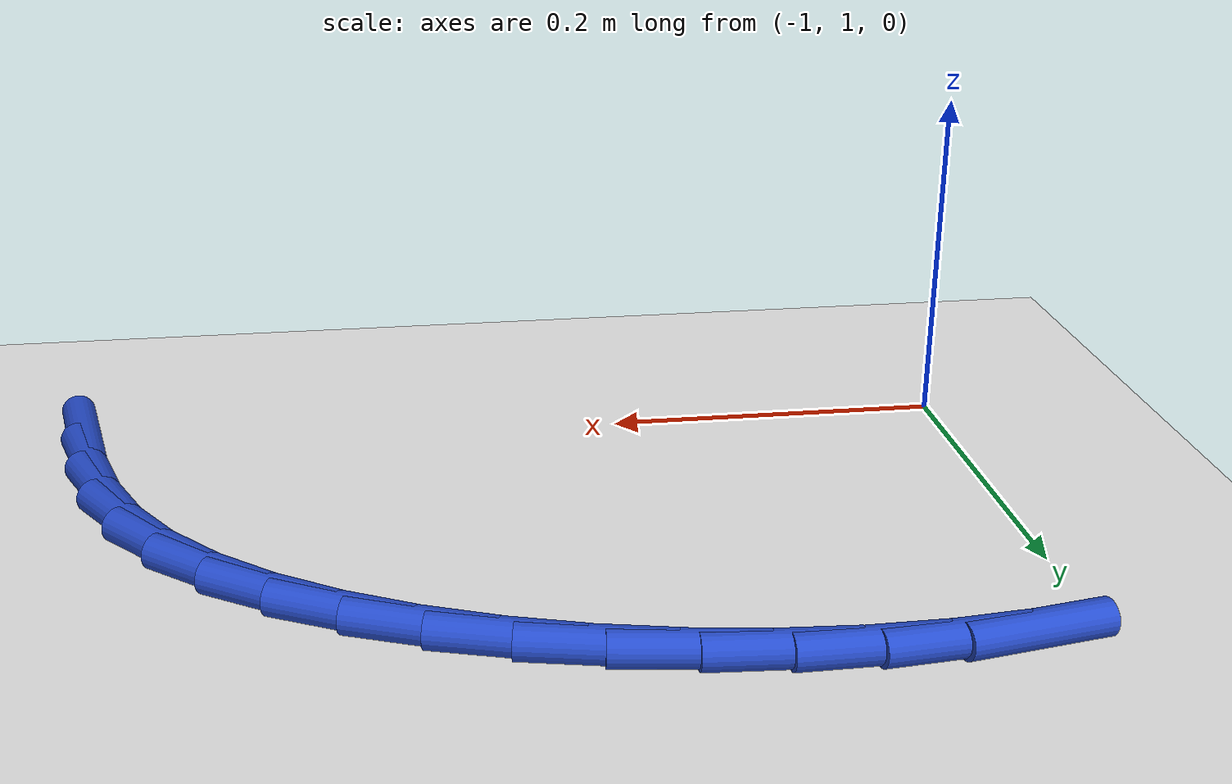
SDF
<sdf version="1.6">
 <world name="default">
  <model name="ground_plane">
   <static>1</static>
   <link name="link">
    <collision name="collision">
     <geometry><plane><normal>0 0 1</normal><size>100 100</size></plane></geometry>
     <surface><friction><ode><mu>100</mu><mu2>50</mu2></ode></friction></surface>
    </collision>
    <visual name="visual">
     <cast_shadows>0</cast_shadows>
     <geometry><plane><normal>0 0 1</normal><size>100 100</size></plane></geometry>
     <material>
      <script><uri>file://media/materials/scripts/gazebo.material</uri><name>Gazebo/WhiteGlow</name></script>
     </material>
    </visual>
   </link>
  </model>
  <model name="line">
   <link name="link_29">
    <pose>-0.476572409296679 0.9991853779181132 0.01 0 1.57 -1.3871959680780457</pose>
    <collision name="collision">
     <geometry><cylinder><radius>0.01</radius><length>0.08</length></cylinder></geometry>
    </collision>
    <visual name="visual">
     <material>
      <script><name>Gazebo/Blue</name><uri>file://media/materials/scripts/gazebo.material</uri></script>
     </material>
     <geometry><cylinder><radius>0.01</radius><length>0.08</length></cylinder></geometry>
    </visual>
   </link>
   <link name="link_30">
    <pose>-0.48404642883330745 1.039435023666088 0.01 0 1.57 -1.2870315435014392</pose>
    <collision name="collision">
     <geometry><cylinder><radius>0.01</radius><length>0.08</length></cylinder></geometry>
    </collision>
    <visual name="visual">
     <material>
      <script><name>Gazebo/Blue</name><uri>file://media/materials/scripts/gazebo.material</uri></script>
     </material>
     <geometry><cylinder><radius>0.01</radius><length>0.08</length></cylinder></geometry>
    </visual>
   </link>
   <link name="link_31">
    <pose>-0.49517599136182033 1.0775976872513888 0.01 0 1.57 -1.155021056296306</pose>
    <collision name="collision">
     <geometry><cylinder><radius>0.01</radius><length>0.08</length></cylinder></geometry>
    </collision>
    <visual name="visual">
     <material>
      <script><name>Gazebo/Blue</name><uri>file://media/materials/scripts/gazebo.material</uri></script>
     </material>
     <geometry><cylinder><radius>0.01</radius><length>0.08</length></cylinder></geometry>
    </visual>
   </link>
   <link name="link_32">
    <pose>-0.5108675786234624 1.1131380295784703 0.01 0 1.57 -0.9947271172294986</pose>
    <collision name="collision">
     <geometry><cylinder><radius>0.01</radius><length>0.08</length></cylinder></geometry>
    </collision>
    <visual name="visual">
     <material>
      <script><name>Gazebo/Blue</name><uri>file://media/materials/scripts/gazebo.material</uri></script>
     </material>
     <geometry><cylinder><radius>0.01</radius><length>0.08</length></cylinder></geometry>
    </visual>
   </link>
   <link name="link_33">
    <pose>-0.5319247623001148 1.145555402155814 0.01 0 1.57 -0.8366649857890878</pose>
    <collision name="collision">
     <geometry><cylinder><radius>0.01</radius><length>0.08</length></cylinder></geometry>
    </collision>
    <visual name="visual">
     <material>
      <script><name>Gazebo/Blue</name><uri>file://media/materials/scripts/gazebo.material</uri></script>
     </material>
     <geometry><cylinder><radius>0.01</radius><length>0.08</length></cylinder></geometry>
    </visual>
   </link>
   <link name="link_34">
    <pose>-0.5581978076402031 1.174670512598399 0.01 0 1.57 -0.6970692271816917</pose>
    <collision name="collision">
     <geometry><cylinder><radius>0.01</radius><length>0.08</length></cylinder></geometry>
    </collision>
    <visual name="visual">
     <material>
      <script><name>Gazebo/Blue</name><uri>file://media/materials/scripts/gazebo.material</uri></script>
     </material>
     <geometry><cylinder><radius>0.01</radius><length>0.08</length></cylinder></geometry>
    </visual>
   </link>
   <link name="link_35">
    <pose>-0.5890205901844026 1.2004781416000117 0.01 0 1.57 -0.5751749426472138</pose>
    <collision name="collision">
     <geometry><cylinder><radius>0.01</radius><length>0.08</length></cylinder></geometry>
    </collision>
    <visual name="visual">
     <material>
      <script><name>Gazebo/Blue</name><uri>file://media/materials/scripts/gazebo.material</uri></script>
     </material>
     <geometry><cylinder><radius>0.01</radius><length>0.08</length></cylinder></geometry>
    </visual>
   </link>
   <link name="link_36">
    <pose>-0.623721893773296 1.2229747862478875 0.01 0 1.57 -0.46844451210125737</pose>
    <collision name="collision">
     <geometry><cylinder><radius>0.01</radius><length>0.08</length></cylinder></geometry>
    </collision>
    <visual name="visual">
     <material>
      <script><name>Gazebo/Blue</name><uri>file://media/materials/scripts/gazebo.material</uri></script>
     </material>
     <geometry><cylinder><radius>0.01</radius><length>0.08</length></cylinder></geometry>
    </visual>
   </link>
   <link name="link_37">
    <pose>-0.6616305022474658 1.2421569436292614 0.01 0 1.57 -0.37380185613797756</pose>
    <collision name="collision">
     <geometry><cylinder><radius>0.01</radius><length>0.08</length></cylinder></geometry>
    </collision>
    <visual name="visual">
     <material>
      <script><name>Gazebo/Blue</name><uri>file://media/materials/scripts/gazebo.material</uri></script>
     </material>
     <geometry><cylinder><radius>0.01</radius><length>0.08</length></cylinder></geometry>
    </visual>
   </link>
   <link name="link_38">
    <pose>-0.7020751994474957 1.2580211108313704 0.01 0 1.57 -0.2881967867711691</pose>
    <collision name="collision">
     <geometry><cylinder><radius>0.01</radius><length>0.08</length></cylinder></geometry>
    </collision>
    <visual name="visual">
     <material>
      <script><name>Gazebo/Blue</name><uri>file://media/materials/scripts/gazebo.material</uri></script>
     </material>
     <geometry><cylinder><radius>0.01</radius><length>0.08</length></cylinder></geometry>
    </visual>
   </link>
   <link name="link_39">
    <pose>-0.7443847692139681 1.2705637849414477 0.01 0 1.57 -0.2087968252785894</pose>
    <collision name="collision">
     <geometry><cylinder><radius>0.01</radius><length>0.08</length></cylinder></geometry>
    </collision>
    <visual name="visual">
     <material>
      <script><name>Gazebo/Blue</name><uri>file://media/materials/scripts/gazebo.material</uri></script>
     </material>
     <geometry><cylinder><radius>0.01</radius><length>0.08</length></cylinder></geometry>
    </visual>
   </link>
   <link name="link_40">
    <pose>-0.7878879953874665 1.2797814630467303 0.01 0 1.57 -0.13297755218350366</pose>
    <collision name="collision">
     <geometry><cylinder><radius>0.01</radius><length>0.08</length></cylinder></geometry>
    </collision>
    <visual name="visual">
     <material>
      <script><name>Gazebo/Blue</name><uri>file://media/materials/scripts/gazebo.material</uri></script>
     </material>
     <geometry><cylinder><radius>0.01</radius><length>0.08</length></cylinder></geometry>
    </visual>
   </link>
   <link name="link_41">
    <pose>-0.831913661808573 1.2856706422344526 0.01 0 1.57 -0.05821488123679092</pose>
    <collision name="collision">
     <geometry><cylinder><radius>0.01</radius><length>0.08</length></cylinder></geometry>
    </collision>
    <visual name="visual">
     <material>
      <script><name>Gazebo/Blue</name><uri>file://media/materials/scripts/gazebo.material</uri></script>
     </material>
     <geometry><cylinder><radius>0.01</radius><length>0.08</length></cylinder></geometry>
    </visual>
   </link>
   <link name="link_42">
    <pose>-0.8757905523178712 1.288227819591851 0.01 0 1.57 0.01807474883514695</pose>
    <collision name="collision">
     <geometry><cylinder><radius>0.01</radius><length>0.08</length></cylinder></geometry>
    </collision>
    <visual name="visual">
     <material>
      <script><name>Gazebo/Blue</name><uri>file://media/materials/scripts/gazebo.material</uri></script>
     </material>
     <geometry><cylinder><radius>0.01</radius><length>0.08</length></cylinder></geometry>
    </visual>
   </link>
   <link name="link_43">
    <pose>-0.9188474507559437 1.2874494922061603 0.01 0 1.57 0.09762130438071634</pose>
    <collision name="collision">
     <geometry><cylinder><radius>0.01</radius><length>0.08</length></cylinder></geometry>
    </collision>
    <visual name="visual">
     <material>
      <script><name>Gazebo/Blue</name><uri>file://media/materials/scripts/gazebo.material</uri></script>
     </material>
     <geometry><cylinder><radius>0.01</radius><length>0.08</length></cylinder></geometry>
    </visual>
   </link>
   <link name="link_44">
    <pose>-0.9605462645519919 1.283365819004701 0.01 0 1.57 0.17685050622496032</pose>
    <collision name="collision">
     <geometry><cylinder><radius>0.01</radius><length>0.08</length></cylinder></geometry>
    </collision>
    <visual name="visual">
     <material>
      <script><name>Gazebo/Blue</name><uri>file://media/materials/scripts/gazebo.material</uri></script>
     </material>
     <geometry><cylinder><radius>0.01</radius><length>0.08</length></cylinder></geometry>
    </visual>
   </link>
  </model>
 </world>
</sdf>
